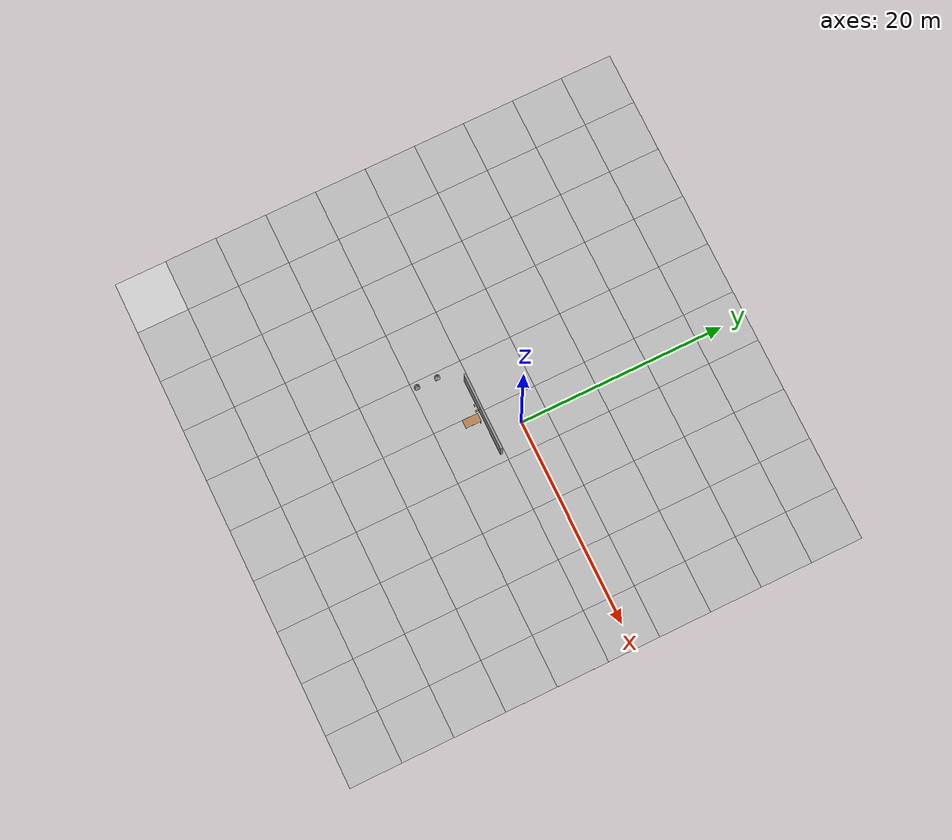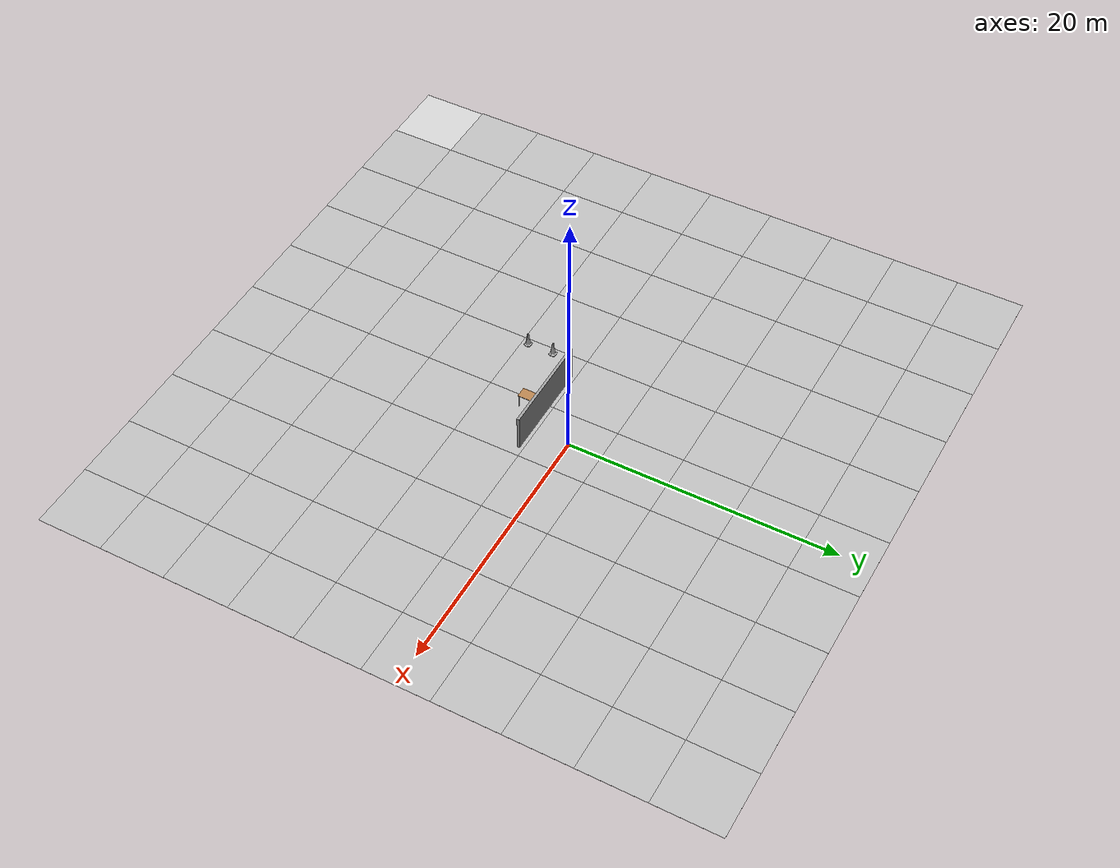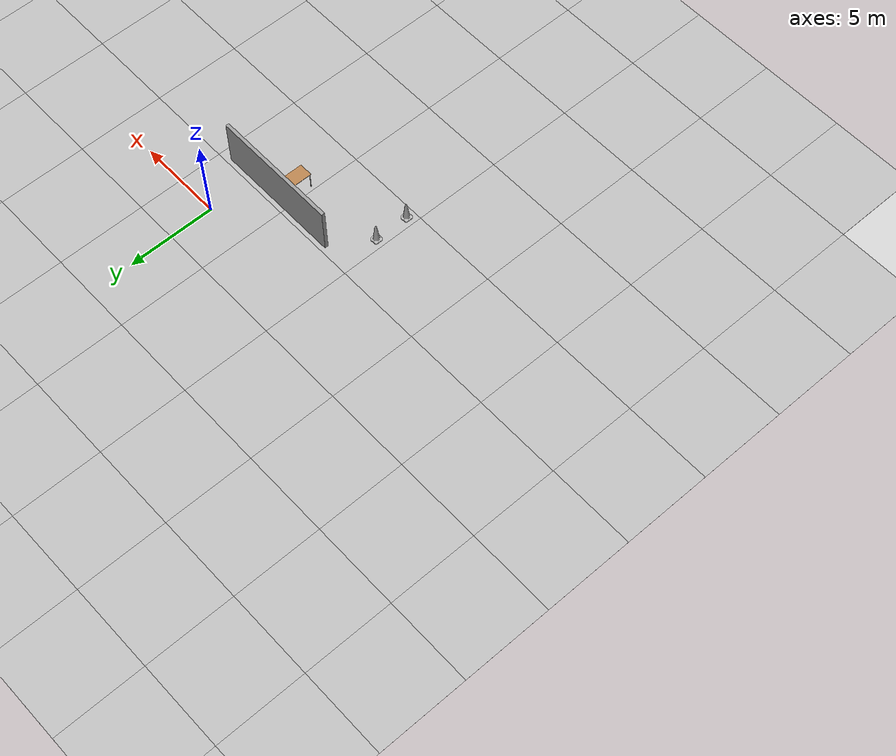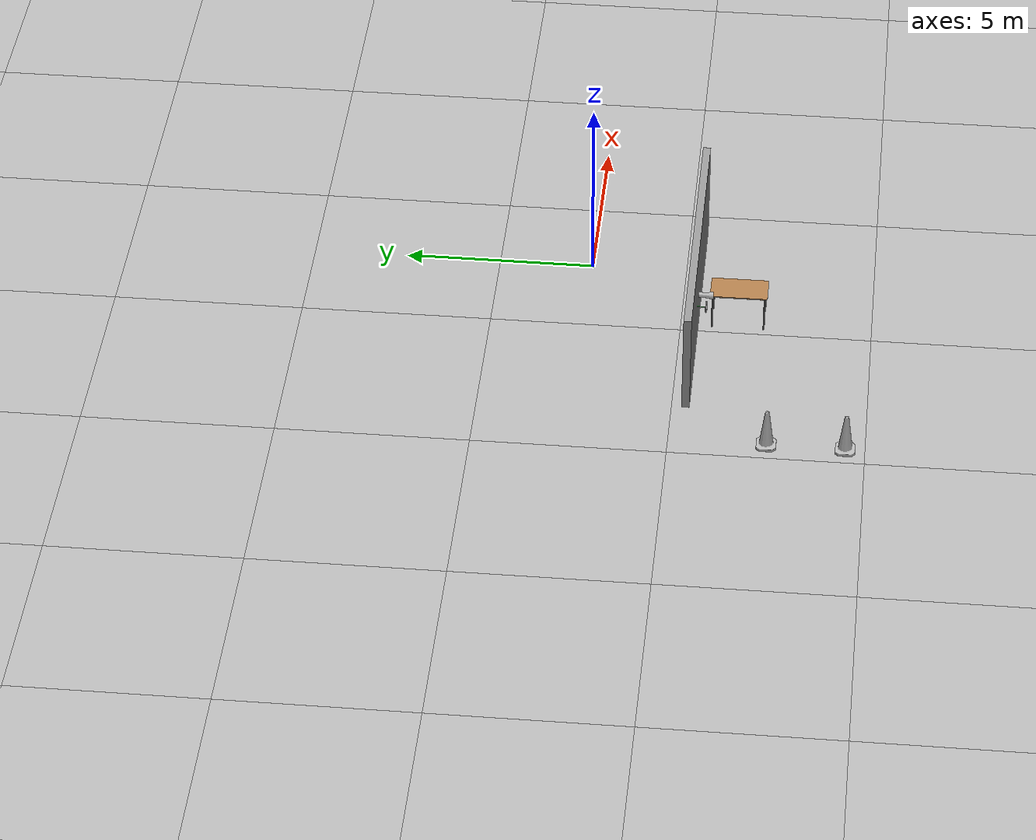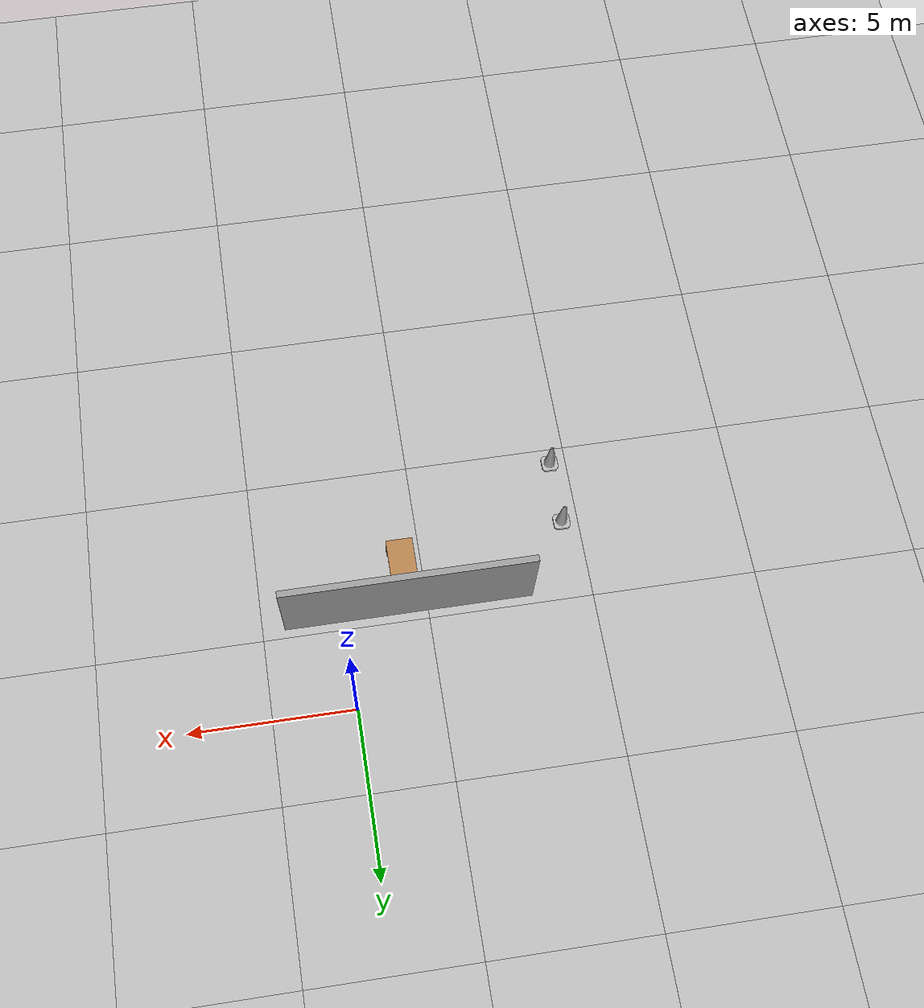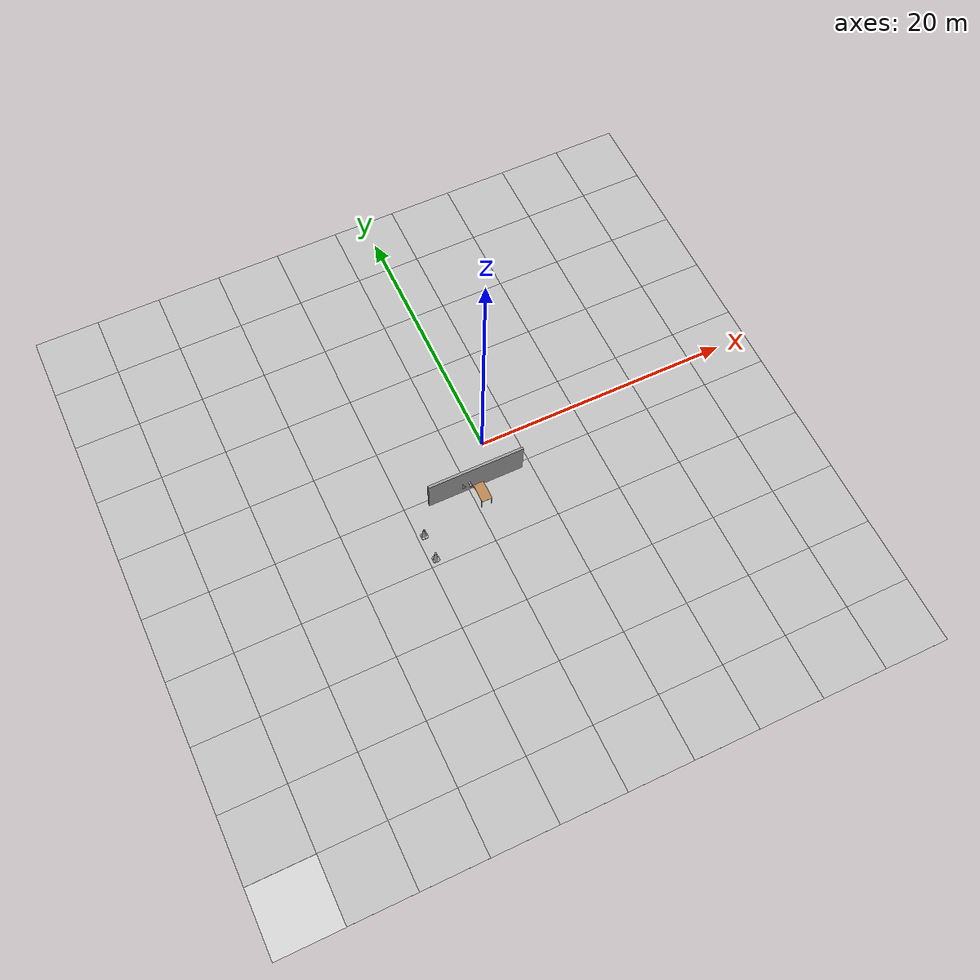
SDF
<sdf version="1.4">
 <world name="vrc_task_3">
  <scene><grid>false</grid><ambient>0.2 0.2 0.2 1.0</ambient></scene>
  <physics type="ode">
   <gravity>0 0 -9.81</gravity>
   <ode>
    <solver>
     <use_dynamic_moi_rescaling>true</use_dynamic_moi_rescaling>
     <type>quick</type>
     <iters>50</iters>
     <sor>1.4</sor>
    </solver>
    <constraints>
     <cfm>0.0</cfm>
     <erp>0.2</erp>
     <contact_max_correcting_vel>100.0</contact_max_correcting_vel>
     <contact_surface_layer>0.0</contact_surface_layer>
    </constraints>
   </ode>
   <real_time_update_rate>1000</real_time_update_rate>
   <max_step_size>0.001</max_step_size>
  </physics>
  <light type="directional" name="sun">
   <pose>0 0 100 0 0 0</pose>
   <diffuse>0.9 0.9 0.9 1</diffuse>
   <specular>0.1 0.1 0.1 1</specular>
   <attenuation>
    <range>1000</range>
    <constant>0.9</constant>
    <linear>0.01</linear>
    <quadratic>0.001</quadratic>
   </attenuation>
   <direction>0.2 0.2 -0.9</direction>
  </light>
  <light type="point" name="light_bulb_2">
   <cast_shadows>false</cast_shadows>
   <pose>-10.6 -19.8 5 0 0 0</pose>
   <diffuse>0.5 0.5 0.5 1</diffuse>
   <specular>0.0 0.0 0.0 1</specular>
   <attenuation>
    <range>80</range>
    <constant>0.9</constant>
    <linear>0.01</linear>
    <quadratic>0.001</quadratic>
   </attenuation>
  </light>
  <include><uri>model://pavement_plane</uri></include>
  <include><uri>model://grey_wall</uri><static>true</static><pose>-1.927 -2.861 0 0 0 0</pose></include>
  <include>
   <uri>model://construction_cone</uri>
   <name>cone_1</name>
   <static>true</static>
   <pose>-7 -5 0 0 0 0</pose>
  </include>
  <include>
   <uri>model://construction_cone</uri>
   <name>cone_2</name>
   <static>true</static>
   <pose>-7 -7 0 0 0 0</pose>
  </include>
  <include><uri>model://table</uri><static>true</static><pose>-1.9 -4.0 0 0 0 1.5707</pose></include>
  <include><uri>model://vrc_standpipe_a</uri><pose>-2.5 -3.5 1.2 -1.5707 0 0</pose></include>
  <include><uri>model://vrc_valve_a</uri><pose>-3.0 -3.414 1.2 -1.5707 0 0</pose></include>
  <plugin filename="libVRCPlugin.so" name="vrc_plugin">
   <atlas><model_name>atlas</model_name><pin_link>pelvis</pin_link></atlas>
   <drc_vehicle><model_name>golf_cart</model_name><seat_link>chassis</seat_link></drc_vehicle>
   <drc_fire_hose>
    <fire_hose_model>vrc_firehose_long</fire_hose_model>
    <coupling_link>coupling</coupling_link>
    <standpipe_model>standpipe</standpipe_model>
    <spout_link>standpipe</spout_link>
    <valve_model>valve</valve_model>
    <valve_joint>valve</valve_joint>
    <thread_pitch>-1000</thread_pitch>
    <coupling_relative_pose>0.001784 -4.6e-05 0.023 1.56985 1.55991 -0.000936</coupling_relative_pose>
   </drc_fire_hose>
  </plugin>
  <plugin filename="libVRCScoringPlugin.so" name="vrc_scoring">
   <score_file>/tmp/vrc_final_task12/score.log</score_file>
  </plugin>
 </world>
</sdf>

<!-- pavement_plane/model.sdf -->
<sdf version='1.4'>
  <model name='pavement_plane'>
    <static>true</static>
    <link name='link'>
      <collision name='collision'>
        <geometry>
          <plane>
            <normal>0 0 1</normal>
            <size>50 50</size>
          </plane>
        </geometry>
        <surface>
          <friction>
            <ode>
              <mu>100</mu>
              <mu2>50</mu2>
            </ode>
          </friction>
        </surface>
      </collision>

  <visual name='visual_0'>
    <pose>-25 -25 0 0 0 0</pose>

      <cast_shadows>false</cast_shadows>
      <geometry>
        <plane>
          <normal>0 0 1</normal>
          <size>5 5</size>
        </plane>
      </geometry>
      <material>
        <script>
          <uri>model://pavement_plane/materials/scripts</uri>
          <uri>model://pavement_plane/materials/textures</uri>
          <name>vrc/pavement</name>
        </script>
      </material>
    </visual>

  <visual name='visual_1'>
    <pose>-20 -25 0 0 0 0</pose>

      <cast_shadows>false</cast_shadows>
      <geometry>
        <plane>
          <normal>0 0 1</normal>
          <size>5 5</size>
        </plane>
      </geometry>
      <material>
        <script>
          <uri>model://pavement_plane/materials/scripts</uri>
          <uri>model://pavement_plane/materials/textures</uri>
          <name>vrc/pavement</name>
        </script>
      </material>
    </visual>

  <visual name='visual_2'>
    <pose>-15 -25 0 0 0 0</pose>

      <cast_shadows>false</cast_shadows>
      <geometry>
        <plane>
          <normal>0 0 1</normal>
          <size>5 5</size>
        </plane>
      </geometry>
      <material>
        <script>
          <uri>model://pavement_plane/materials/scripts</uri>
          <uri>model://pavement_plane/materials/textures</uri>
          <name>vrc/pavement</name>
        </script>
      </material>
    </visual>

  <visual name='visual_3'>
    <pose>-10 -25 0 0 0 0</pose>

      <cast_shadows>false</cast_shadows>
      <geometry>
        <plane>
          <normal>0 0 1</normal>
          <size>5 5</size>
        </plane>
      </geometry>
      <material>
        <script>
          <uri>model://pavement_plane/materials/scripts</uri>
          <uri>model://pavement_plane/materials/textures</uri>
          <name>vrc/pavement</name>
        </script>
      </material>
    </visual>

  <visual name='visual_4'>
    <pose>-5 -25 0 0 0 0</pose>

      <cast_shadows>false</cast_shadows>
      <geometry>
        <plane>
          <normal>0 0 1</normal>
          <size>5 5</size>
        </plane>
      </geometry>
      <material>
        <script>
          <uri>model://pavement_plane/materials/scripts</uri>
          <uri>model://pavement_plane/materials/textures</uri>
          <name>vrc/pavement</name>
        </script>
      </material>
    </visual>

  <visual name='visual_5'>
    <pose>0 -25 0 0 0 0</pose>

      <cast_shadows>false</cast_shadows>
      <geometry>
        <plane>
          <normal>0 0 1</normal>
          <size>5 5</size>
        </plane>
      </geometry>
      <material>
        <script>
          <uri>model://pavement_plane/materials/scripts</uri>
          <uri>model://pavement_plane/materials/textures</uri>
          <name>vrc/pavement</name>
        </script>
      </material>
    </visual>

  <visual name='visual_6'>
    <pose>5 -25 0 0 0 0</pose>

      <cast_shadows>false</cast_shadows>
      <geometry>
        <plane>
          <normal>0 0 1</normal>
          <size>5 5</size>
        </plane>
      </geometry>
      <material>
        <script>
          <uri>model://pavement_plane/materials/scripts</uri>
          <uri>model://pavement_plane/materials/textures</uri>
          <name>vrc/pavement</name>
        </script>
      </material>
    </visual>

  <visual name='visual_7'>
    <pose>10 -25 0 0 0 0</pose>

      <cast_shadows>false</cast_shadows>
      <geometry>
        <plane>
          <normal>0 0 1</normal>
          <size>5 5</size>
        </plane>
      </geometry>
      <material>
        <script>
          <uri>model://pavement_plane/materials/scripts</uri>
          <uri>model://pavement_plane/materials/textures</uri>
          <name>vrc/pavement</name>
        </script>
      </material>
    </visual>

  <visual name='visual_8'>
    <pose>15 -25 0 0 0 0</pose>

      <cast_shadows>false</cast_shadows>
      <geometry>
        <plane>
          <normal>0 0 1</normal>
          <size>5 5</size>
        </plane>
      </geometry>
      <material>
        <script>
          <uri>model://pavement_plane/materials/scripts</uri>
          <uri>model://pavement_plane/materials/textures</uri>
          <name>vrc/pavement</name>
        </script>
      </material>
    </visual>

  <visual name='visual_9'>
    <pose>20 -25 0 0 0 0</pose>

      <cast_shadows>false</cast_shadows>
      <geometry>
        <plane>
          <normal>0 0 1</normal>
          <size>5 5</size>
        </plane>
      </geometry>
      <material>
        <script>
          <uri>model://pavement_plane/materials/scripts</uri>
          <uri>model://pavement_plane/materials/textures</uri>
          <name>vrc/pavement</name>
        </script>
      </material>
    </visual>

  <visual name='visual_10'>
    <pose>-25 -20 0 0 0 0</pose>

      <cast_shadows>false</cast_shadows>
      <geometry>
        <plane>
          <normal>0 0 1</normal>
          <size>5 5</size>
        </plane>
      </geometry>
      <material>
        <script>
          <uri>model://pavement_plane/materials/scripts</uri>
          <uri>model://pavement_plane/materials/textures</uri>
          <name>vrc/pavement</name>
        </script>
      </material>
    </visual>

  <visual name='visual_11'>
    <pose>-20 -20 0 0 0 0</pose>

      <cast_shadows>false</cast_shadows>
      <geometry>
        <plane>
          <normal>0 0 1</normal>
          <size>5 5</size>
        </plane>
      </geometry>
      <material>
        <script>
          <uri>model://pavement_plane/materials/scripts</uri>
          <uri>model://pavement_plane/materials/textures</uri>
          <name>vrc/pavement</name>
        </script>
      </material>
    </visual>

  <visual name='visual_12'>
    <pose>-15 -20 0 0 0 0</pose>

      <cast_shadows>false</cast_shadows>
      <geometry>
        <plane>
          <normal>0 0 1</normal>
          <size>5 5</size>
        </plane>
      </geometry>
      <material>
        <script>
          <uri>model://pavement_plane/materials/scripts</uri>
          <uri>model://pavement_plane/materials/textures</uri>
          <name>vrc/pavement</name>
        </script>
      </material>
    </visual>

  <visual name='visual_13'>
    <pose>-10 -20 0 0 0 0</pose>

      <cast_shadows>false</cast_shadows>
      <geometry>
        <plane>
          <normal>0 0 1</normal>
          <size>5 5</size>
        </plane>
      </geometry>
      <material>
        <script>
          <uri>model://pavement_plane/materials/scripts</uri>
          <uri>model://pavement_plane/materials/textures</uri>
          <name>vrc/pavement</name>
        </script>
      </material>
    </visual>

  <visual name='visual_14'>
    <pose>-5 -20 0 0 0 0</pose>

      <cast_shadows>false</cast_shadows>
      <geometry>
        <plane>
          <normal>0 0 1</normal>
          <size>5 5</size>
        </plane>
      </geometry>
      <material>
        <script>
          <uri>model://pavement_plane/materials/scripts</uri>
          <uri>model://pavement_plane/materials/textures</uri>
          <name>vrc/pavement</name>
        </script>
      </material>
    </visual>

  <visual name='visual_15'>
    <pose>0 -20 0 0 0 0</pose>

      <cast_shadows>false</cast_shadows>
      <geometry>
        <plane>
          <normal>0 0 1</normal>
          <size>5 5</size>
        </plane>
      </geometry>
      <material>
        <script>
          <uri>model://pavement_plane/materials/scripts</uri>
          <uri>model://pavement_plane/materials/textures</uri>
          <name>vrc/pavement</name>
        </script>
      </material>
    </visual>

  <visual name='visual_16'>
    <pose>5 -20 0 0 0 0</pose>

      <cast_shadows>false</cast_shadows>
      <geometry>
        <plane>
          <normal>0 0 1</normal>
          <size>5 5</size>
        </plane>
      </geometry>
      <material>
        <script>
          <uri>model://pavement_plane/materials/scripts</uri>
          <uri>model://pavement_plane/materials/textures</uri>
          <name>vrc/pavement</name>
        </script>
      </material>
    </visual>

  <visual name='visual_17'>
    <pose>10 -20 0 0 0 0</pose>

      <cast_shadows>false</cast_shadows>
      <geometry>
        <plane>
          <normal>0 0 1</normal>
          <size>5 5</size>
        </plane>
      </geometry>
      <material>
        <script>
          <uri>model://pavement_plane/materials/scripts</uri>
          <uri>model://pavement_plane/materials/textures</uri>
          <name>vrc/pavement</name>
        </script>
      </material>
    </visual>

  <visual name='visual_18'>
    <pose>15 -20 0 0 0 0</pose>

      <cast_shadows>false</cast_shadows>
      <geometry>
        <plane>
          <normal>0 0 1</normal>
          <size>5 5</size>
        </plane>
      </geometry>
      <material>
        <script>
          <uri>model://pavement_plane/materials/scripts</uri>
          <uri>model://pavement_plane/materials/textures</uri>
          <name>vrc/pavement</name>
        </script>
      </material>
    </visual>

  <visual name='visual_19'>
    <pose>20 -20 0 0 0 0</pose>

      <cast_shadows>false</cast_shadows>
      <geometry>
        <plane>
          <normal>0 0 1</normal>
          <size>5 5</size>
        </plane>
      </geometry>
      <material>
        <script>
          <uri>model://pavement_plane/materials/scripts</uri>
          <uri>model://pavement_plane/materials/textures</uri>
          <name>vrc/pavement</name>
        </script>
      </material>
    </visual>

  <visual name='visual_20'>
    <pose>-25 -15 0 0 0 0</pose>

      <cast_shadows>false</cast_shadows>
      <geometry>
        <plane>
          <normal>0 0 1</normal>
          <size>5 5</size>
        </plane>
      </geometry>
      <material>
        <script>
          <uri>model://pavement_plane/materials/scripts</uri>
          <uri>model://pavement_plane/materials/textures</uri>
          <name>vrc/pavement</name>
        </script>
      </material>
    </visual>

  <visual name='visual_21'>
    <pose>-20 -15 0 0 0 0</pose>

      <cast_shadows>false</cast_shadows>
      <geometry>
        <plane>
          <normal>0 0 1</normal>
          <size>5 5</size>
        </plane>
      </geometry>
      <material>
        <script>
          <uri>model://pavement_plane/materials/scripts</uri>
          <uri>model://pavement_plane/materials/textures</uri>
          <name>vrc/pavement</name>
        </script>
      </material>
    </visual>

  <visual name='visual_22'>
    <pose>-15 -15 0 0 0 0</pose>

      <cast_shadows>false</cast_shadows>
      <geometry>
        <plane>
          <normal>0 0 1</normal>
          <size>5 5</size>
        </plane>
      </geometry>
      <material>
        <script>
          <uri>model://pavement_plane/materials/scripts</uri>
          <uri>model://pavement_plane/materials/textures</uri>
          <name>vrc/pavement</name>
        </script>
      </material>
    </visual>

  <visual name='visual_23'>
    <pose>-10 -15 0 0 0 0</pose>

      <cast_shadows>false</cast_shadows>
      <geometry>
        <plane>
          <normal>0 0 1</normal>
          <size>5 5</size>
        </plane>
      </geometry>
      <material>
        <script>
          <uri>model://pavement_plane/materials/scripts</uri>
          <uri>model://pavement_plane/materials/textures</uri>
          <name>vrc/pavement</name>
        </script>
      </material>
    </visual>

  <visual name='visual_24'>
    <pose>-5 -15 0 0 0 0</pose>

      <cast_shadows>false</cast_shadows>
      <geometry>
        <plane>
          <normal>0 0 1</normal>
          <size>5 5</size>
        </plane>
      </geometry>
      <material>
        <script>
          <uri>model://pavement_plane/materials/scripts</uri>
          <uri>model://pavement_plane/materials/textures</uri>
          <name>vrc/pavement</name>
        </script>
      </material>
    </visual>

  <visual name='visual_25'>
    <pose>0 -15 0 0 0 0</pose>

      <cast_shadows>false</cast_shadows>
      <geometry>
        <plane>
          <normal>0 0 1</normal>
          <size>5 5</size>
        </plane>
      </geometry>
      <material>
        <script>
          <uri>model://pavement_plane/materials/scripts</uri>
          <uri>model://pavement_plane/materials/textures</uri>
          <name>vrc/pavement</name>
        </script>
      </material>
    </visual>

  <visual name='visual_26'>
    <pose>5 -15 0 0 0 0</pose>

      <cast_shadows>false</cast_shadows>
      <geometry>
        <plane>
          <normal>0 0 1</normal>
          <size>5 5</size>
        </plane>
      </geometry>
      <material>
        <script>
          <uri>model://pavement_plane/materials/scripts</uri>
          <uri>model://pavement_plane/materials/textures</uri>
          <name>vrc/pavement</name>
        </script>
      </material>
    </visual>

  <visual name='visual_27'>
    <pose>10 -15 0 0 0 0</pose>

      <cast_shadows>false</cast_shadows>
      <geometry>
        <plane>
          <normal>0 0 1</normal>
          <size>5 5</size>
        </plane>
      </geometry>
      <material>
        <script>
          <uri>model://pavement_plane/materials/scripts</uri>
          <uri>model://pavement_plane/materials/textures</uri>
          <name>vrc/pavement</name>
        </script>
      </material>
    </visual>

  <visual name='visual_28'>
    <pose>15 -15 0 0 0 0</pose>

      <cast_shadows>false</cast_shadows>
      <geometry>
        <plane>
          <normal>0 0 1</normal>
          <size>5 5</size>
        </plane>
      </geometry>
      <material>
        <script>
          <uri>model://pavement_plane/materials/scripts</uri>
          <uri>model://pavement_plane/materials/textures</uri>
          <name>vrc/pavement</name>
        </script>
      </material>
    </visual>

  <visual name='visual_29'>
    <pose>20 -15 0 0 0 0</pose>

      <cast_shadows>false</cast_shadows>
      <geometry>
        <plane>
          <normal>0 0 1</normal>
          <size>5 5</size>
        </plane>
      </geometry>
      <material>
        <script>
          <uri>model://pavement_plane/materials/scripts</uri>
          <uri>model://pavement_plane/materials/textures</uri>
          <name>vrc/pavement</name>
        </script>
      </material>
    </visual>

  <visual name='visual_30'>
    <pose>-25 -10 0 0 0 0</pose>

      <cast_shadows>false</cast_shadows>
      <geometry>
        <plane>
          <normal>0 0 1</normal>
          <size>5 5</size>
        </plane>
      </geometry>
      <material>
        <script>
          <uri>model://pavement_plane/materials/scripts</uri>
          <uri>model://pavement_plane/materials/textures</uri>
          <name>vrc/pavement</name>
        </script>
      </material>
    </visual>

  <visual name='visual_31'>
    <pose>-20 -10 0 0 0 0</pose>

      <cast_shadows>false</cast_shadows>
      <geometry>
        <plane>
          <normal>0 0 1</normal>
          <size>5 5</size>
        </plane>
      </geometry>
      <material>
        <script>
          <uri>model://pavement_plane/materials/scripts</uri>
          <uri>model://pavement_plane/materials/textures</uri>
          <name>vrc/pavement</name>
        </script>
      </material>
    </visual>

  <visual name='visual_32'>
    <pose>-15 -10 0 0 0 0</pose>

      <cast_shadows>false</cast_shadows>
      <geometry>
        <plane>
          <normal>0 0 1</normal>
          <size>5 5</size>
        </plane>
      </geometry>
      <material>
        <script>
          <uri>model://pavement_plane/materials/scripts</uri>
          <uri>model://pavement_plane/materials/textures</uri>
          <name>vrc/pavement</name>
        </script>
      </material>
    </visual>

  <visual name='visual_33'>
    <pose>-10 -10 0 0 0 0</pose>

      <cast_shadows>false</cast_shadows>
      <geometry>
        <plane>
          <normal>0 0 1</normal>
          <size>5 5</size>
        </plane>
      </geometry>
      <material>
        <script>
          <uri>model://pavement_plane/materials/scripts</uri>
          <uri>model://pavement_plane/materials/textures</uri>
          <name>vrc/pavement</name>
        </script>
      </material>
    </visual>

  <visual name='visual_34'>
    <pose>-5 -10 0 0 0 0</pose>

      <cast_shadows>false</cast_shadows>
      <geometry>
        <plane>
          <normal>0 0 1</normal>
          <size>5 5</size>
        </plane>
      </geometry>
      <material>
        <script>
          <uri>model://pavement_plane/materials/scripts</uri>
          <uri>model://pavement_plane/materials/textures</uri>
          <name>vrc/pavement</name>
        </script>
      </material>
    </visual>

  <visual name='visual_35'>
    <pose>0 -10 0 0 0 0</pose>

      <cast_shadows>false</cast_shadows>
      <geometry>
        <plane>
          <normal>0 0 1</normal>
          <size>5 5</size>
        </plane>
      </geometry>
      <material>
        <script>
          <uri>model://pavement_plane/materials/scripts</uri>
          <uri>model://pavement_plane/materials/textures</uri>
          <name>vrc/pavement</name>
        </script>
      </material>
    </visual>

  <visual name='visual_36'>
    <pose>5 -10 0 0 0 0</pose>

      <cast_shadows>false</cast_shadows>
      <geometry>
        <plane>
          <normal>0 0 1</normal>
          <size>5 5</size>
        </plane>
      </geometry>
      <material>
        <script>
          <uri>model://pavement_plane/materials/scripts</uri>
          <uri>model://pavement_plane/materials/textures</uri>
          <name>vrc/pavement</name>
        </script>
      </material>
    </visual>

  <visual name='visual_37'>
    <pose>10 -10 0 0 0 0</pose>

      <cast_shadows>false</cast_shadows>
      <geometry>
        <plane>
          <normal>0 0 1</normal>
          <size>5 5</size>
        </plane>
      </geometry>
      <material>
        <script>
          <uri>model://pavement_plane/materials/scripts</uri>
          <uri>model://pavement_plane/materials/textures</uri>
          <name>vrc/pavement</name>
        </script>
      </material>
    </visual>

  <visual name='visual_38'>
    <pose>15 -10 0 0 0 0</pose>

      <cast_shadows>false</cast_shadows>
      <geometry>
        <plane>
          <normal>0 0 1</normal>
          <size>5 5</size>
        </plane>
      </geometry>
      <material>
        <script>
          <uri>model://pavement_plane/materials/scripts</uri>
          <uri>model://pavement_plane/materials/textures</uri>
          <name>vrc/pavement</name>
        </script>
      </material>
    </visual>

  <visual name='visual_39'>
    <pose>20 -10 0 0 0 0</pose>

      <cast_shadows>false</cast_shadows>
      <geometry>
        <plane>
          <normal>0 0 1</normal>
          <size>5 5</size>
        </plane>
      </geometry>
      <material>
        <script>
          <uri>model://pavement_plane/materials/scripts</uri>
          <uri>model://pavement_plane/materials/textures</uri>
          <name>vrc/pavement</name>
        </script>
      </material>
    </visual>

  <visual name='visual_40'>
    <pose>-25 -5 0 0 0 0</pose>

      <cast_shadows>false</cast_shadows>
      <geometry>
        <plane>
          <normal>0 0 1</normal>
          <size>5 5</size>
        </plane>
      </geometry>
      <material>
        <script>
          <uri>model://pavement_plane/materials/scripts</uri>
          <uri>model://pavement_plane/materials/textures</uri>
          <name>vrc/pavement</name>
        </script>
      </material>
    </visual>

  <visual name='visual_41'>
    <pose>-20 -5 0 0 0 0</pose>

      <cast_shadows>false</cast_shadows>
      <geometry>
        <plane>
          <normal>0 0 1</normal>
          <size>5 5</size>
        </plane>
      </geometry>
      <material>
        <script>
          <uri>model://pavement_plane/materials/scripts</uri>
          <uri>model://pavement_plane/materials/textures</uri>
          <name>vrc/pavement</name>
        </script>
      </material>
    </visual>

  <visual name='visual_42'>
    <pose>-15 -5 0 0 0 0</pose>

      <cast_shadows>false</cast_shadows>
      <geometry>
        <plane>
          <normal>0 0 1</normal>
          <size>5 5</size>
        </plane>
      </geometry>
      <material>
        <script>
          <uri>model://pavement_plane/materials/scripts</uri>
          <uri>model://pavement_plane/materials/textures</uri>
          <name>vrc/pavement</name>
        </script>
      </material>
    </visual>

  <visual name='visual_43'>
    <pose>-10 -5 0 0 0 0</pose>

      <cast_shadows>false</cast_shadows>
      <geometry>
        <plane>
          <normal>0 0 1</normal>
          <size>5 5</size>
        </plane>
      </geometry>
      <material>
        <script>
          <uri>model://pavement_plane/materials/scripts</uri>
          <uri>model://pavement_plane/materials/textures</uri>
          <name>vrc/pavement</name>
        </script>
      </material>
    </visual>

  <visual name='visual_44'>
    <pose>-5 -5 0 0 0 0</pose>

      <cast_shadows>false</cast_shadows>
      <geometry>
        <plane>
          <normal>0 0 1</normal>
          <size>5 5</size>
        </plane>
      </geometry>
      <material>
        <script>
          <uri>model://pavement_plane/materials/scripts</uri>
          <uri>model://pavement_plane/materials/textures</uri>
          <name>vrc/pavement</name>
        </script>
      </material>
    </visual>

  <visual name='visual_45'>
    <pose>0 -5 0 0 0 0</pose>

      <cast_shadows>false</cast_shadows>
      <geometry>
        <plane>
          <normal>0 0 1</normal>
          <size>5 5</size>
        </plane>
      </geometry>
      <material>
        <script>
          <uri>model://pavement_plane/materials/scripts</uri>
          <uri>model://pavement_plane/materials/textures</uri>
          <name>vrc/pavement</name>
        </script>
      </material>
    </visual>

  <visual name='visual_46'>
    <pose>5 -5 0 0 0 0</pose>

      <cast_shadows>false</cast_shadows>
      <geometry>
        <plane>
          <normal>0 0 1</normal>
          <size>5 5</size>
        </plane>
      </geometry>
      <material>
        <script>
          <uri>model://pavement_plane/materials/scripts</uri>
          <uri>model://pavement_plane/materials/textures</uri>
          <name>vrc/pavement</name>
        </script>
      </material>
    </visual>

  <visual name='visual_47'>
    <pose>10 -5 0 0 0 0</pose>

      <cast_shadows>false</cast_shadows>
      <geometry>
        <plane>
          <normal>0 0 1</normal>
          <size>5 5</size>
        </plane>
      </geometry>
      <material>
        <script>
          <uri>model://pavement_plane/materials/scripts</uri>
          <uri>model://pavement_plane/materials/textures</uri>
          <name>vrc/pavement</name>
        </script>
      </material>
    </visual>

  <visual name='visual_48'>
    <pose>15 -5 0 0 0 0</pose>

      <cast_shadows>false</cast_shadows>
      <geometry>
        <plane>
          <normal>0 0 1</normal>
          <size>5 5</size>
        </plane>
      </geometry>
      <material>
        <script>
          <uri>model://pavement_plane/materials/scripts</uri>
          <uri>model://pavement_plane/materials/textures</uri>
          <name>vrc/pavement</name>
        </script>
      </material>
    </visual>

  <visual name='visual_49'>
    <pose>20 -5 0 0 0 0</pose>

      <cast_shadows>false</cast_shadows>
      <geometry>
        <plane>
          <normal>0 0 1</normal>
          <size>5 5</size>
        </plane>
      </geometry>
      <material>
        <script>
          <uri>model://pavement_plane/materials/scripts</uri>
          <uri>model://pavement_plane/materials/textures</uri>
          <name>vrc/pavement</name>
        </script>
      </material>
    </visual>

  <visual name='visual_50'>
    <pose>-25 0 0 0 0 0</pose>

      <cast_shadows>false</cast_shadows>
      <geometry>
        <plane>
          <normal>0 0 1</normal>
          <size>5 5</size>
        </plane>
      </geometry>
      <material>
        <script>
          <uri>model://pavement_plane/materials/scripts</uri>
          <uri>model://pavement_plane/materials/textures</uri>
          <name>vrc/pavement</name>
        </script>
      </material>
    </visual>

  <visual name='visual_51'>
    <pose>-20 0 0 0 0 0</pose>

      <cast_shadows>false</cast_shadows>
      <geometry>
        <plane>
          <normal>0 0 1</normal>
          <size>5 5</size>
        </plane>
      </geometry>
      <material>
        <script>
          <uri>model://pavement_plane/materials/scripts</uri>
          <uri>model://pavement_plane/materials/textures</uri>
          <name>vrc/pavement</name>
        </script>
      </material>
    </visual>

  <visual name='visual_52'>
    <pose>-15 0 0 0 0 0</pose>

      <cast_shadows>false</cast_shadows>
      <geometry>
        <plane>
          <normal>0 0 1</normal>
          <size>5 5</size>
        </plane>
      </geometry>
      <material>
        <script>
          <uri>model://pavement_plane/materials/scripts</uri>
          <uri>model://pavement_plane/materials/textures</uri>
          <name>vrc/pavement</name>
        </script>
      </material>
    </visual>

  <visual name='visual_53'>
    <pose>-10 0 0 0 0 0</pose>

      <cast_shadows>false</cast_shadows>
      <geometry>
        <plane>
          <normal>0 0 1</normal>
          <size>5 5</size>
        </plane>
      </geometry>
      <material>
        <script>
          <uri>model://pavement_plane/materials/scripts</uri>
          <uri>model://pavement_plane/materials/textures</uri>
          <name>vrc/pavement</name>
        </script>
      </material>
    </visual>

  <visual name='visual_54'>
    <pose>-5 0 0 0 0 0</pose>

      <cast_shadows>false</cast_shadows>
      <geometry>
        <plane>
          <normal>0 0 1</normal>
          <size>5 5</size>
        </plane>
      </geometry>
      <material>
        <script>
          <uri>model://pavement_plane/materials/scripts</uri>
          <uri>model://pavement_plane/materials/textures</uri>
          <name>vrc/pavement</name>
        </script>
      </material>
    </visual>

  <visual name='visual_55'>
    <pose>0 0 0 0 0 0</pose>

      <cast_shadows>false</cast_shadows>
      <geometry>
        <plane>
          <normal>0 0 1</normal>
          <size>5 5</size>
        </plane>
      </geometry>
      <material>
        <script>
          <uri>model://pavement_plane/materials/scripts</uri>
          <uri>model://pavement_plane/materials/textures</uri>
          <name>vrc/pavement</name>
        </script>
      </material>
    </visual>

  <visual name='visual_56'>
    <pose>5 0 0 0 0 0</pose>

      <cast_shadows>false</cast_shadows>
      <geometry>
        <plane>
          <normal>0 0 1</normal>
          <size>5 5</size>
        </plane>
      </geometry>
      <material>
        <script>
          <uri>model://pavement_plane/materials/scripts</uri>
          <uri>model://pavement_plane/materials/textures</uri>
          <name>vrc/pavement</name>
        </script>
      </material>
    </visual>

  <visual name='visual_57'>
    <pose>10 0 0 0 0 0</pose>

      <cast_shadows>false</cast_shadows>
      <geometry>
        <plane>
          <normal>0 0 1</normal>
          <size>5 5</size>
        </plane>
      </geometry>
      <material>
        <script>
          <uri>model://pavement_plane/materials/scripts</uri>
          <uri>model://pavement_plane/materials/textures</uri>
          <name>vrc/pavement</name>
        </script>
      </material>
    </visual>

  <visual name='visual_58'>
    <pose>15 0 0 0 0 0</pose>

      <cast_shadows>false</cast_shadows>
      <geometry>
        <plane>
          <normal>0 0 1</normal>
          <size>5 5</size>
        </plane>
      </geometry>
      <material>
        <script>
          <uri>model://pavement_plane/materials/scripts</uri>
          <uri>model://pavement_plane/materials/textures</uri>
          <name>vrc/pavement</name>
        </script>
      </material>
    </visual>

  <visual name='visual_59'>
    <pose>20 0 0 0 0 0</pose>

      <cast_shadows>false</cast_shadows>
      <geometry>
        <plane>
          <normal>0 0 1</normal>
          <size>5 5</size>
        </plane>
      </geometry>
      <material>
        <script>
          <uri>model://pavement_plane/materials/scripts</uri>
          <uri>model://pavement_plane/materials/textures</uri>
          <name>vrc/pavement</name>
        </script>
      </material>
    </visual>

  <visual name='visual_60'>
    <pose>-25 5 0 0 0 0</pose>

      <cast_shadows>false</cast_shadows>
      <geometry>
        <plane>
          <normal>0 0 1</normal>
          <size>5 5</size>
        </plane>
      </geometry>
      <material>
        <script>
          <uri>model://pavement_plane/materials/scripts</uri>
          <uri>model://pavement_plane/materials/textures</uri>
          <name>vrc/pavement</name>
        </script>
      </material>
    </visual>

  <visual name='visual_61'>
    <pose>-20 5 0 0 0 0</pose>

      <cast_shadows>false</cast_shadows>
      <geometry>
        <plane>
          <normal>0 0 1</normal>
          <size>5 5</size>
        </plane>
      </geometry>
      <material>
        <script>
          <uri>model://pavement_plane/materials/scripts</uri>
          <uri>model://pavement_plane/materials/textures</uri>
          <name>vrc/pavement</name>
        </script>
      </material>
    </visual>

  <visual name='visual_62'>
    <pose>-15 5 0 0 0 0</pose>

      <cast_shadows>false</cast_shadows>
      <geometry>
        <plane>
          <normal>0 0 1</normal>
          <size>5 5</size>
        </plane>
      </geometry>
      <material>
        <script>
          <uri>model://pavement_plane/materials/scripts</uri>
          <uri>model://pavement_plane/materials/textures</uri>
          <name>vrc/pavement</name>
        </script>
      </material>
    </visual>

  <visual name='visual_63'>
    <pose>-10 5 0 0 0 0</pose>

      <cast_shadows>false</cast_shadows>
      <geometry>
        <plane>
          <normal>0 0 1</normal>
          <size>5 5</size>
        </plane>
      </geometry>
      <material>
        <script>
          <uri>model://pavement_plane/materials/scripts</uri>
          <uri>model://pavement_plane/materials/textures</uri>
          <name>vrc/pavement</name>
        </script>
      </material>
    </visual>

  <visual name='visual_64'>
    <pose>-5 5 0 0 0 0</pose>

      <cast_shadows>false</cast_shadows>
      <geometry>
        <plane>
          <normal>0 0 1</normal>
          <size>5 5</size>
        </plane>
      </geometry>
      <material>
        <script>
          <uri>model://pavement_plane/materials/scripts</uri>
          <uri>model://pavement_plane/materials/textures</uri>
          <name>vrc/pavement</name>
        </script>
      </material>
    </visual>

  <visual name='visual_65'>
    <pose>0 5 0 0 0 0</pose>

      <cast_shadows>false</cast_shadows>
      <geometry>
        <plane>
          <normal>0 0 1</normal>
          <size>5 5</size>
        </plane>
      </geometry>
      <material>
        <script>
          <uri>model://pavement_plane/materials/scripts</uri>
          <uri>model://pavement_plane/materials/textures</uri>
          <name>vrc/pavement</name>
        </script>
      </material>
    </visual>

  <visual name='visual_66'>
    <pose>5 5 0 0 0 0</pose>

      <cast_shadows>false</cast_shadows>
      <geometry>
        <plane>
          <normal>0 0 1</normal>
          <size>5 5</size>
        </plane>
      </geometry>
      <material>
        <script>
          <uri>model://pavement_plane/materials/scripts</uri>
          <uri>model://pavement_plane/materials/textures</uri>
          <name>vrc/pavement</name>
        </script>
      </material>
    </visual>

  <visual name='visual_67'>
    <pose>10 5 0 0 0 0</pose>

      <cast_shadows>false</cast_shadows>
      <geometry>
        <plane>
          <normal>0 0 1</normal>
          <size>5 5</size>
        </plane>
      </geometry>
      <material>
        <script>
          <uri>model://pavement_plane/materials/scripts</uri>
          <uri>model://pavement_plane/materials/textures</uri>
          <name>vrc/pavement</name>
        </script>
      </material>
    </visual>

  <visual name='visual_68'>
    <pose>15 5 0 0 0 0</pose>

      <cast_shadows>false</cast_shadows>
      <geometry>
        <plane>
          <normal>0 0 1</normal>
          <size>5 5</size>
        </plane>
      </geometry>
      <material>
        <script>
          <uri>model://pavement_plane/materials/scripts</uri>
          <uri>model://pavement_plane/materials/textures</uri>
          <name>vrc/pavement</name>
        </script>
      </material>
    </visual>

  <visual name='visual_69'>
    <pose>20 5 0 0 0 0</pose>

      <cast_shadows>false</cast_shadows>
      <geometry>
        <plane>
          <normal>0 0 1</normal>
          <size>5 5</size>
        </plane>
      </geometry>
      <material>
        <script>
          <uri>model://pavement_plane/materials/scripts</uri>
          <uri>model://pavement_plane/materials/textures</uri>
          <name>vrc/pavement</name>
        </script>
      </material>
    </visual>

  <visual name='visual_70'>
    <pose>-25 10 0 0 0 0</pose>

      <cast_shadows>false</cast_shadows>
      <geometry>
        <plane>
          <normal>0 0 1</normal>
          <size>5 5</size>
        </plane>
      </geometry>
      <material>
        <script>
          <uri>model://pavement_plane/materials/scripts</uri>
          <uri>model://pavement_plane/materials/textures</uri>
          <name>vrc/pavement</name>
        </script>
      </material>
    </visual>

  <visual name='visual_71'>
    <pose>-20 10 0 0 0 0</pose>

      <cast_shadows>false</cast_shadows>
      <geometry>
        <plane>
          <normal>0 0 1</normal>
          <size>5 5</size>
        </plane>
      </geometry>
      <material>
        <script>
          <uri>model://pavement_plane/materials/scripts</uri>
          <uri>model://pavement_plane/materials/textures</uri>
          <name>vrc/pavement</name>
        </script>
      </material>
    </visual>

  <visual name='visual_72'>
    <pose>-15 10 0 0 0 0</pose>

      <cast_shadows>false</cast_shadows>
      <geometry>
        <plane>
          <normal>0 0 1</normal>
          <size>5 5</size>
        </plane>
      </geometry>
      <material>
        <script>
          <uri>model://pavement_plane/materials/scripts</uri>
          <uri>model://pavement_plane/materials/textures</uri>
          <name>vrc/pavement</name>
        </script>
      </material>
    </visual>

  <visual name='visual_73'>
    <pose>-10 10 0 0 0 0</pose>

      <cast_shadows>false</cast_shadows>
      <geometry>
        <plane>
          <normal>0 0 1</normal>
          <size>5 5</size>
        </plane>
      </geometry>
      <material>
        <script>
          <uri>model://pavement_plane/materials/scripts</uri>
          <uri>model://pavement_plane/materials/textures</uri>
          <name>vrc/pavement</name>
        </script>
      </material>
    </visual>

  <visual name='visual_74'>
    <pose>-5 10 0 0 0 0</pose>

      <cast_shadows>false</cast_shadows>
      <geometry>
        <plane>
          <normal>0 0 1</normal>
          <size>5 5</size>
        </plane>
      </geometry>
      <material>
        <script>
          <uri>model://pavement_plane/materials/scripts</uri>
          <uri>model://pavement_plane/materials/textures</uri>
          <name>vrc/pavement</name>
        </script>
      </material>
    </visual>

  <visual name='visual_75'>
    <pose>0 10 0 0 0 0</pose>

      <cast_shadows>false</cast_shadows>
      <geometry>
        <plane>
          <normal>0 0 1</normal>
          <size>5 5</size>
        </plane>
      </geometry>
      <material>
        <script>
          <uri>model://pavement_plane/materials/scripts</uri>
          <uri>model://pavement_plane/materials/textures</uri>
          <name>vrc/pavement</name>
        </script>
      </material>
    </visual>

  <visual name='visual_76'>
    <pose>5 10 0 0 0 0</pose>

      <cast_shadows>false</cast_shadows>
      <geometry>
        <plane>
          <normal>0 0 1</normal>
          <size>5 5</size>
        </plane>
      </geometry>
      <material>
        <script>
          <uri>model://pavement_plane/materials/scripts</uri>
          <uri>model://pavement_plane/materials/textures</uri>
          <name>vrc/pavement</name>
        </script>
      </material>
    </visual>

  <visual name='visual_77'>
    <pose>10 10 0 0 0 0</pose>

      <cast_shadows>false</cast_shadows>
      <geometry>
        <plane>
          <normal>0 0 1</normal>
          <size>5 5</size>
        </plane>
      </geometry>
      <material>
        <script>
          <uri>model://pavement_plane/materials/scripts</uri>
          <uri>model://pavement_plane/materials/textures</uri>
          <name>vrc/pavement</name>
        </script>
      </material>
    </visual>

  <visual name='visual_78'>
    <pose>15 10 0 0 0 0</pose>

      <cast_shadows>false</cast_shadows>
      <geometry>
        <plane>
          <normal>0 0 1</normal>
          <size>5 5</size>
        </plane>
      </geometry>
      <material>
        <script>
          <uri>model://pavement_plane/materials/scripts</uri>
          <uri>model://pavement_plane/materials/textures</uri>
          <name>vrc/pavement</name>
        </script>
      </material>
    </visual>

  <visual name='visual_79'>
    <pose>20 10 0 0 0 0</pose>

      <cast_shadows>false</cast_shadows>
      <geometry>
        <plane>
          <normal>0 0 1</normal>
          <size>5 5</size>
        </plane>
      </geometry>
      <material>
        <script>
          <uri>model://pavement_plane/materials/scripts</uri>
          <uri>model://pavement_plane/materials/textures</uri>
          <name>vrc/pavement</name>
        </script>
      </material>
    </visual>

  <visual name='visual_80'>
    <pose>-25 15 0 0 0 0</pose>

      <cast_shadows>false</cast_shadows>
      <geometry>
        <plane>
          <normal>0 0 1</normal>
          <size>5 5</size>
        </plane>
      </geometry>
      <material>
        <script>
          <uri>model://pavement_plane/materials/scripts</uri>
          <uri>model://pavement_plane/materials/textures</uri>
          <name>vrc/pavement</name>
        </script>
      </material>
    </visual>

  <visual name='visual_81'>
    <pose>-20 15 0 0 0 0</pose>

      <cast_shadows>false</cast_shadows>
      <geometry>
        <plane>
          <normal>0 0 1</normal>
          <size>5 5</size>
        </plane>
      </geometry>
      <material>
        <script>
          <uri>model://pavement_plane/materials/scripts</uri>
          <uri>model://pavement_plane/materials/textures</uri>
          <name>vrc/pavement</name>
        </script>
      </material>
    </visual>

  <visual name='visual_82'>
    <pose>-15 15 0 0 0 0</pose>

      <cast_shadows>false</cast_shadows>
      <geometry>
        <plane>
          <normal>0 0 1</normal>
          <size>5 5</size>
        </plane>
      </geometry>
      <material>
        <script>
          <uri>model://pavement_plane/materials/scripts</uri>
          <uri>model://pavement_plane/materials/textures</uri>
          <name>vrc/pavement</name>
        </script>
      </material>
    </visual>

  <visual name='visual_83'>
    <pose>-10 15 0 0 0 0</pose>

      <cast_shadows>false</cast_shadows>
      <geometry>
        <plane>
          <normal>0 0 1</normal>
          <size>5 5</size>
        </plane>
      </geometry>
      <material>
        <script>
          <uri>model://pavement_plane/materials/scripts</uri>
          <uri>model://pavement_plane/materials/textures</uri>
          <name>vrc/pavement</name>
        </script>
      </material>
    </visual>

  <visual name='visual_84'>
    <pose>-5 15 0 0 0 0</pose>

      <cast_shadows>false</cast_shadows>
      <geometry>
        <plane>
          <normal>0 0 1</normal>
          <size>5 5</size>
        </plane>
      </geometry>
      <material>
        <script>
          <uri>model://pavement_plane/materials/scripts</uri>
          <uri>model://pavement_plane/materials/textures</uri>
          <name>vrc/pavement</name>
        </script>
      </material>
    </visual>

  <visual name='visual_85'>
    <pose>0 15 0 0 0 0</pose>

      <cast_shadows>false</cast_shadows>
      <geometry>
        <plane>
          <normal>0 0 1</normal>
          <size>5 5</size>
        </plane>
      </geometry>
      <material>
        <script>
          <uri>model://pavement_plane/materials/scripts</uri>
          <uri>model://pavement_plane/materials/textures</uri>
          <name>vrc/pavement</name>
        </script>
      </material>
    </visual>

  <visual name='visual_86'>
    <pose>5 15 0 0 0 0</pose>

      <cast_shadows>false</cast_shadows>
      <geometry>
        <plane>
          <normal>0 0 1</normal>
          <size>5 5</size>
        </plane>
      </geometry>
      <material>
        <script>
          <uri>model://pavement_plane/materials/scripts</uri>
          <uri>model://pavement_plane/materials/textures</uri>
          <name>vrc/pavement</name>
        </script>
      </material>
    </visual>

  <visual name='visual_87'>
    <pose>10 15 0 0 0 0</pose>

      <cast_shadows>false</cast_shadows>
      <geometry>
        <plane>
          <normal>0 0 1</normal>
          <size>5 5</size>
        </plane>
      </geometry>
      <material>
        <script>
          <uri>model://pavement_plane/materials/scripts</uri>
          <uri>model://pavement_plane/materials/textures</uri>
          <name>vrc/pavement</name>
        </script>
      </material>
    </visual>

  <visual name='visual_88'>
    <pose>15 15 0 0 0 0</pose>

      <cast_shadows>false</cast_shadows>
      <geometry>
        <plane>
          <normal>0 0 1</normal>
          <size>5 5</size>
        </plane>
      </geometry>
      <material>
        <script>
          <uri>model://pavement_plane/materials/scripts</uri>
          <uri>model://pavement_plane/materials/textures</uri>
          <name>vrc/pavement</name>
        </script>
      </material>
    </visual>

  <visual name='visual_89'>
    <pose>20 15 0 0 0 0</pose>

      <cast_shadows>false</cast_shadows>
      <geometry>
        <plane>
          <normal>0 0 1</normal>
          <size>5 5</size>
        </plane>
      </geometry>
      <material>
        <script>
          <uri>model://pavement_plane/materials/scripts</uri>
          <uri>model://pavement_plane/materials/textures</uri>
          <name>vrc/pavement</name>
        </script>
      </material>
    </visual>

  <visual name='visual_90'>
    <pose>-25 20 0 0 0 0</pose>

      <cast_shadows>false</cast_shadows>
      <geometry>
        <plane>
          <normal>0 0 1</normal>
          <size>5 5</size>
        </plane>
      </geometry>
      <material>
        <script>
          <uri>model://pavement_plane/materials/scripts</uri>
          <uri>model://pavement_plane/materials/textures</uri>
          <name>vrc/pavement</name>
        </script>
      </material>
    </visual>

  <visual name='visual_91'>
    <pose>-20 20 0 0 0 0</pose>

      <cast_shadows>false</cast_shadows>
      <geometry>
        <plane>
          <normal>0 0 1</normal>
          <size>5 5</size>
        </plane>
      </geometry>
      <material>
        <script>
          <uri>model://pavement_plane/materials/scripts</uri>
          <uri>model://pavement_plane/materials/textures</uri>
          <name>vrc/pavement</name>
        </script>
      </material>
    </visual>

  <visual name='visual_92'>
    <pose>-15 20 0 0 0 0</pose>

      <cast_shadows>false</cast_shadows>
      <geometry>
        <plane>
          <normal>0 0 1</normal>
          <size>5 5</size>
        </plane>
      </geometry>
      <material>
        <script>
          <uri>model://pavement_plane/materials/scripts</uri>
          <uri>model://pavement_plane/materials/textures</uri>
          <name>vrc/pavement</name>
        </script>
      </material>
    </visual>

  <visual name='visual_93'>
    <pose>-10 20 0 0 0 0</pose>

      <cast_shadows>false</cast_shadows>
      <geometry>
        <plane>
          <normal>0 0 1</normal>
          <size>5 5</size>
        </plane>
      </geometry>
      <material>
        <script>
          <uri>model://pavement_plane/materials/scripts</uri>
          <uri>model://pavement_plane/materials/textures</uri>
          <name>vrc/pavement</name>
        </script>
      </material>
    </visual>

  <visual name='visual_94'>
    <pose>-5 20 0 0 0 0</pose>

      <cast_shadows>false</cast_shadows>
      <geometry>
        <plane>
          <normal>0 0 1</normal>
          <size>5 5</size>
        </plane>
      </geometry>
      <material>
        <script>
          <uri>model://pavement_plane/materials/scripts</uri>
          <uri>model://pavement_plane/materials/textures</uri>
          <name>vrc/pavement</name>
        </script>
      </material>
    </visual>

  <visual name='visual_95'>
    <pose>0 20 0 0 0 0</pose>

      <cast_shadows>false</cast_shadows>
      <geometry>
        <plane>
          <normal>0 0 1</normal>
          <size>5 5</size>
        </plane>
      </geometry>
      <material>
        <script>
          <uri>model://pavement_plane/materials/scripts</uri>
          <uri>model://pavement_plane/materials/textures</uri>
          <name>vrc/pavement</name>
        </script>
      </material>
    </visual>

  <visual name='visual_96'>
    <pose>5 20 0 0 0 0</pose>

      <cast_shadows>false</cast_shadows>
      <geometry>
        <plane>
          <normal>0 0 1</normal>
          <size>5 5</size>
        </plane>
      </geometry>
      <material>
        <script>
          <uri>model://pavement_plane/materials/scripts</uri>
          <uri>model://pavement_plane/materials/textures</uri>
          <name>vrc/pavement</name>
        </script>
      </material>
    </visual>

  <visual name='visual_97'>
    <pose>10 20 0 0 0 0</pose>

      <cast_shadows>false</cast_shadows>
      <geometry>
        <plane>
          <normal>0 0 1</normal>
          <size>5 5</size>
        </plane>
      </geometry>
      <material>
        <script>
          <uri>model://pavement_plane/materials/scripts</uri>
          <uri>model://pavement_plane/materials/textures</uri>
          <name>vrc/pavement</name>
        </script>
      </material>
    </visual>

  <visual name='visual_98'>
    <pose>15 20 0 0 0 0</pose>

      <cast_shadows>false</cast_shadows>
      <geometry>
        <plane>
          <normal>0 0 1</normal>
          <size>5 5</size>
        </plane>
      </geometry>
      <material>
        <script>
          <uri>model://pavement_plane/materials/scripts</uri>
          <uri>model://pavement_plane/materials/textures</uri>
          <name>vrc/pavement</name>
        </script>
      </material>
    </visual>

  <visual name='visual_99'>
    <pose>20 20 0 0 0 0</pose>

      <cast_shadows>false</cast_shadows>
      <geometry>
        <plane>
          <normal>0 0 1</normal>
          <size>5 5</size>
        </plane>
      </geometry>
      <material>
        <script>
          <uri>model://pavement_plane/materials/scripts</uri>
          <uri>model://pavement_plane/materials/textures</uri>
          <name>vrc/pavement</name>
        </script>
      </material>
    </visual>

    </link>
  </model>
</sdf>

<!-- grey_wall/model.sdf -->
<sdf version="1.5">
  <model name="grey_wall">
    <static>true</static>
    <link name="link">
      <pose>0 0 1.4 0 0 0</pose>
      <collision name="collision">
        <geometry>
          <box>
            <size>7.5 0.2 2.8</size>
          </box>
        </geometry>
      </collision>
      <visual name="visual">
        <cast_shadows>false</cast_shadows>
        <geometry>
          <box>
            <size>7.5 0.2 2.8</size>
          </box>
        </geometry>
        <material>
          <script>
            <uri>model://../model_source/models/grey_wall/materials/scripts</uri>
            <uri>model://../model_source/models/grey_wall/materials/textures</uri>
            <name>vrc/grey_wall</name>
          </script>
        </material>
      </visual>
    </link>
  </model>
</sdf>

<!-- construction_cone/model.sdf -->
<sdf version="1.5">
  <model name="Construction Cone">
    <link name="link">
      <collision name="collision">
        <geometry>
          <mesh>
            <scale>10 10 10</scale>
            <uri>file://isr-testbed/construction_cone/meshes/construction_cone.dae</uri>
          </mesh>
        </geometry>
      </collision>
      <visual name="visual">
        <geometry>
          <mesh>
            <scale>10 10 10</scale>
            <uri>file://isr-testbed/construction_cone/meshes/construction_cone.dae</uri>
          </mesh>
        </geometry>
      </visual>
    </link>
  </model>
</sdf>

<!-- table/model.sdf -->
<sdf version="1.5">
  <model name="table">
    <static>true</static>
    <link name="link">
      <collision name="surface">
        <pose>0 0 1.0 0 0 0</pose>
        <geometry>
          <box>
            <size>1.5 0.8 0.03</size>
          </box>
        </geometry>
        <surface>
          <friction>
            <ode>
              <mu>0.6</mu>
              <mu2>0.6</mu2>
            </ode>
          </friction>
        </surface>
      </collision>
      <visual name="visual1">
        <pose>0 0 1.0 0 0 0</pose>
        <geometry>
          <box>
            <size>1.5 0.8 0.03</size>
          </box>
        </geometry>
        <material>
          <script>
            <uri>model://media/materials/scripts/gazebo.material</uri>
            <name>Gazebo/Wood</name>
          </script>
        </material>
      </visual>
      <collision name="front_left_leg">
        <pose>0.68 0.38 0.5 0 0 0</pose>
        <geometry>
          <cylinder>
            <radius>0.02</radius>
            <length>1.0</length>
          </cylinder>
        </geometry>
      </collision>
      <visual name="front_left_leg">
        <pose>0.68 0.38 0.5 0 0 0</pose>
        <geometry>
          <cylinder>
            <radius>0.02</radius>
            <length>1.0</length>
          </cylinder>
        </geometry>
        <material>
          <script>
            <uri>model://media/materials/scripts/gazebo.material</uri>
            <name>Gazebo/Grey</name>
          </script>
        </material>
      </visual>
      <collision name="front_right_leg">
        <pose>0.68 -0.38 0.5 0 0 0</pose>
        <geometry>
          <cylinder>
            <radius>0.02</radius>
            <length>1.0</length>
          </cylinder>
        </geometry>
      </collision>
      <visual name="front_right_leg">
        <pose>0.68 -0.38 0.5 0 0 0</pose>
        <geometry>
          <cylinder>
            <radius>0.02</radius>
            <length>1.0</length>
          </cylinder>
        </geometry>
        <material>
          <script>
            <uri>model://media/materials/scripts/gazebo.material</uri>
            <name>Gazebo/Grey</name>
          </script>
        </material>
      </visual>
      <collision name="back_right_leg">
        <pose>-0.68 -0.38 0.5 0 0 0</pose>
        <geometry>
          <cylinder>
            <radius>0.02</radius>
            <length>1.0</length>
          </cylinder>
        </geometry>
      </collision>
      <visual name="back_right_leg">
        <pose>-0.68 -0.38 0.5 0 0 0</pose>
        <geometry>
          <cylinder>
            <radius>0.02</radius>
            <length>1.0</length>
          </cylinder>
        </geometry>
        <material>
          <script>
            <uri>model://media/materials/scripts/gazebo.material</uri>
            <name>Gazebo/Grey</name>
          </script>
        </material>
      </visual>
      <collision name="back_left_leg">
        <pose>-0.68 0.38 0.5 0 0 0</pose>
        <geometry>
          <cylinder>
            <radius>0.02</radius>
            <length>1.0</length>
          </cylinder>
        </geometry>
      </collision>
      <visual name="back_left_leg">
        <pose>-0.68 0.38 0.5 0 0 0</pose>
        <geometry>
          <cylinder>
            <radius>0.02</radius>
            <length>1.0</length>
          </cylinder>
        </geometry>
        <material>
          <script>
            <uri>model://media/materials/scripts/gazebo.material</uri>
            <name>Gazebo/Grey</name>
          </script>
        </material>
      </visual>
    </link>
  </model>
</sdf>

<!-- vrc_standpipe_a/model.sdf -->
<sdf version='1.4'>
  <model name='standpipe'>
    <static>false</static>
    <link name="standpipe">

      <!-- stop the coupling from entering pipe if valve is open -->
      <collision name="collision_stopper">
        <pose>0 0 0.22 0 0 0</pose>
        <geometry>
          <cylinder>
            <radius>0.069</radius>
            <length>0.1</length>
          </cylinder>
        </geometry>
        <surface>
          <friction>
            <ode>
              <mu>0.6</mu>
              <mu2>0.6</mu2>
            </ode>
          </friction>
        </surface>
      </collision>
      <collision name="collision">
        <pose>0 0 0.15 0 0 0</pose>
        <geometry>
          <mesh>
            <uri>model://vrc_standpipe_a/meshes/vrc_standpipe.dae</uri>
          </mesh>
        </geometry>
        <surface>
          <friction>
            <ode>
              <mu>0.6</mu>
              <mu2>0.6</mu2>
            </ode>
          </friction>
        </surface>
      </collision>

      <visual name="visual">
        <pose>0 0 0.15 0 0 0</pose>
        <geometry>
          <mesh>
            <uri>model://vrc_standpipe_a/meshes/vrc_standpipe.dae</uri>
          </mesh>
        </geometry>
      </visual>
    </link>
    <joint name="world" type="revolute">
      <parent>world</parent>
      <child>standpipe</child>
      <axis>
        <xyz>0 1 0</xyz>
        <limit>
          <lower>0</lower>
          <upper>0</upper>
        </limit>
      </axis>
    </joint>

  </model>
</sdf>

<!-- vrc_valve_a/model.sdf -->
<sdf version='1.4'>
  <model name='valve'>
    <static>false</static>
    <link name='wheel'>
      <pose>0 0 0.07 0 0 0</pose>

      <inertial>
        <pose>0 0 0.15 0 0 0</pose>
        <mass>3.0</mass>
        <inertia>
          <ixx>0.0601875</ixx>
          <ixy>0</ixy>
          <ixz>0</ixz>
          <iyy>0.0601875</iyy>
          <iyz>0</iyz>
          <izz>0.120225</izz>
        </inertia>
      </inertial>

      <collision name="collision">
        <pose>0 0 0.15 0 0 0</pose>
        <geometry>
          <mesh>
            <uri>model://vrc_valve_a/meshes/vrc_valve_a.dae</uri>
          </mesh>
        </geometry>
        <surface>
          <friction>
            <ode>
              <mu>0.7</mu>
              <mu2>0.7</mu2>
            </ode>
          </friction>
        </surface>
      </collision>

      <visual name="visual">
        <pose>0 0 0.15 0 0 0</pose>
        <geometry>
          <mesh>
            <uri>model://vrc_valve_a/meshes/vrc_valve_a.dae</uri>
          </mesh>
        </geometry>
        <material>
          <script>
            <uri>model://vrc_valve_a/materials/scripts</uri>
            <uri>model://vrc_valve_a/materials/textures</uri>
          </script>
        </material>
      </visual>
    </link>

    <link name="pipe">
      <pose>0 0 0.32 0 0 0</pose>

      <inertial>
        <mass>3.0</mass>
        <inertia>
          <ixx>0.0601875</ixx>
          <ixy>0</ixy>
          <ixz>0</ixz>
          <iyy>0.0601875</iyy>
          <iyz>0</iyz>
          <izz>0.120225</izz>
        </inertia>
      </inertial>

      <collision name="collision">
        <pose>0 0 0.017 0 0 0</pose>
        <geometry>
          <cylinder>
            <radius>0.01</radius>
            <length>0.23</length>
          </cylinder>
        </geometry>
        <surface>
          <friction>
            <ode>
              <mu>0.7</mu>
              <mu2>0.7</mu2>
            </ode>
          </friction>
        </surface>
      </collision>
      <visual name="visual">
        <pose>0 0 0.017 0 0 0</pose>
        <geometry>
          <cylinder>
            <radius>0.01</radius>
            <length>0.23</length>
          </cylinder>
        </geometry>
        <material>
          <script>
            <uri>file://media/materials/scripts</uri>
            <name>Gazebo/Green</name>
          </script>
        </material>
      </visual>
    </link>

    <joint name="valve" type="revolute">
      <parent>pipe</parent>
      <child>wheel</child>
      <axis>
        <xyz>0 0 1</xyz>
        <limit>
          <lower>-12.5663706144</lower>
          <upper>0</upper>
        </limit>
        <dynamics>
          <damping>1.0</damping>
        </dynamics>
      </axis>
      <physics>
        <ode>
          <cfm_damping>1</cfm_damping>
        </ode>
      </physics>
    </joint>

    <joint name="world_joint" type="revolute">
      <child>pipe</child>
      <parent>world</parent>
      <axis>
        <limit>
          <lower>0</lower>
          <upper>0</upper>
        </limit>
        <xyz>0 1 0</xyz>
        <dynamics>
          <damping>1.0</damping>
        </dynamics>
      </axis>
      <physics>
        <ode>
          <cfm_damping>1</cfm_damping>
        </ode>
      </physics>
    </joint>
  </model>
</sdf>
